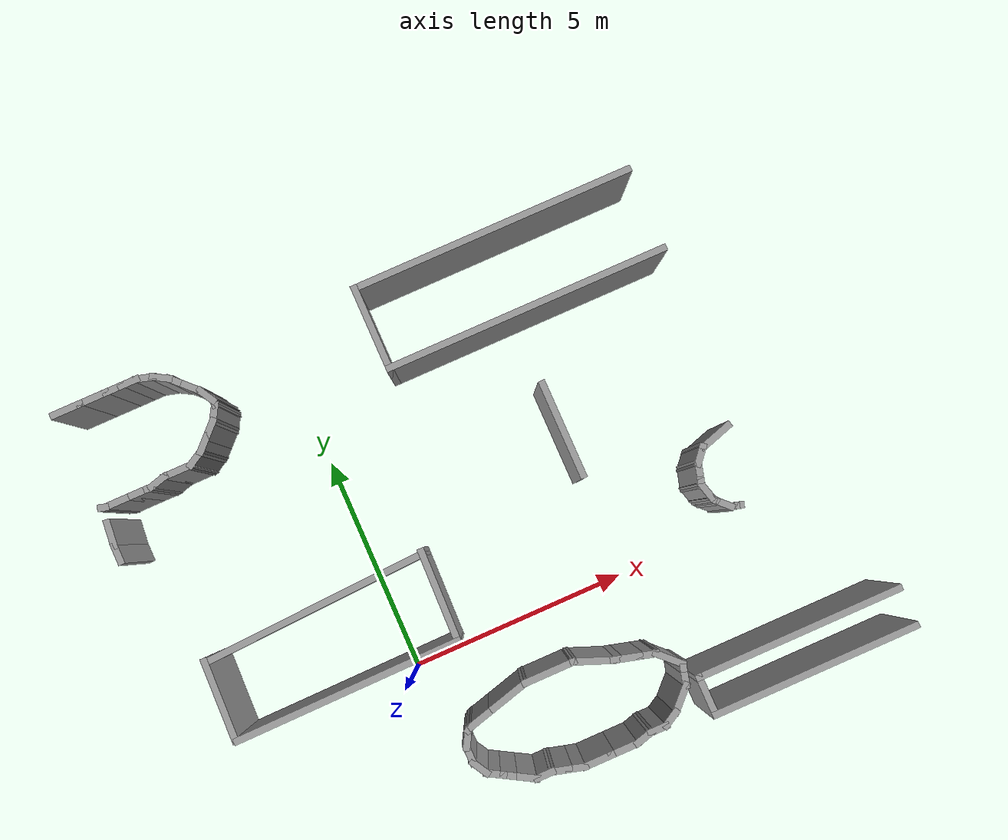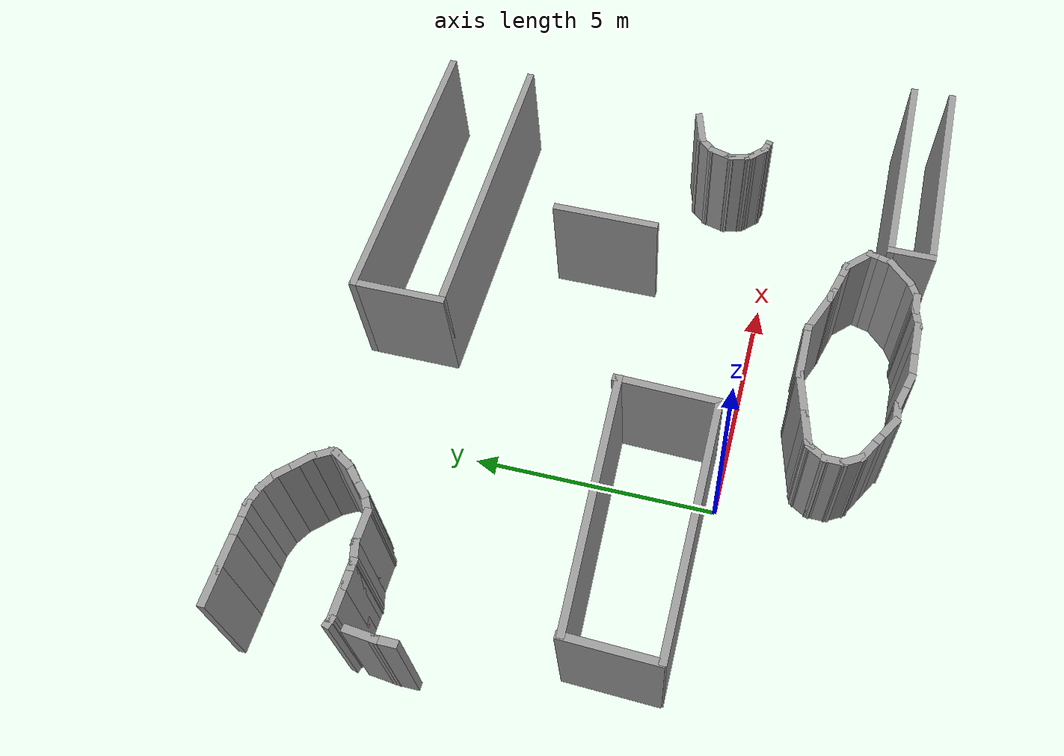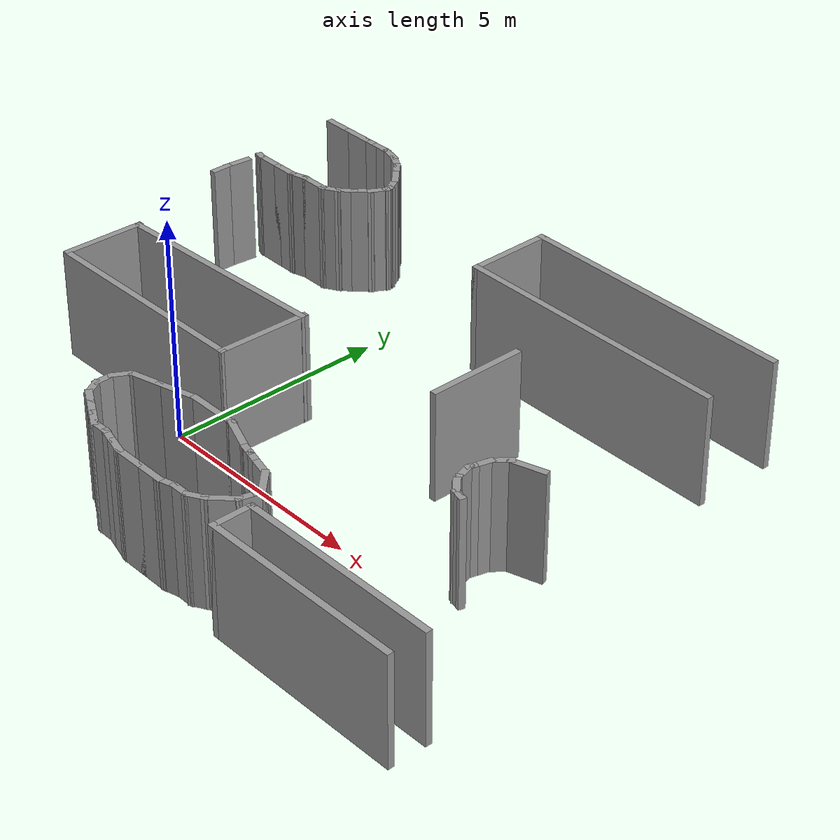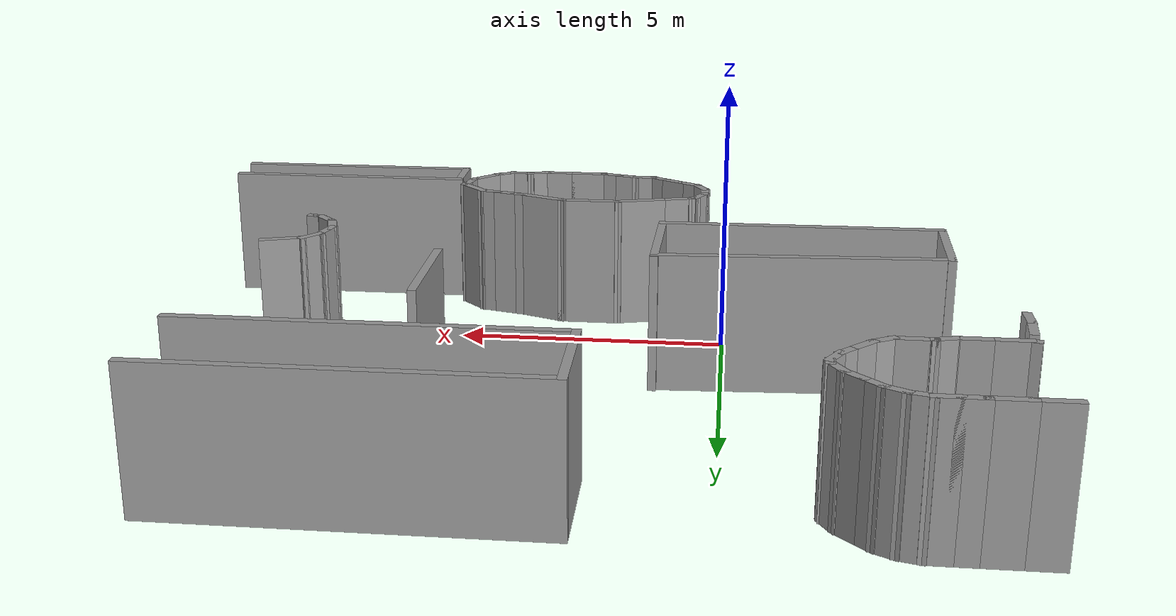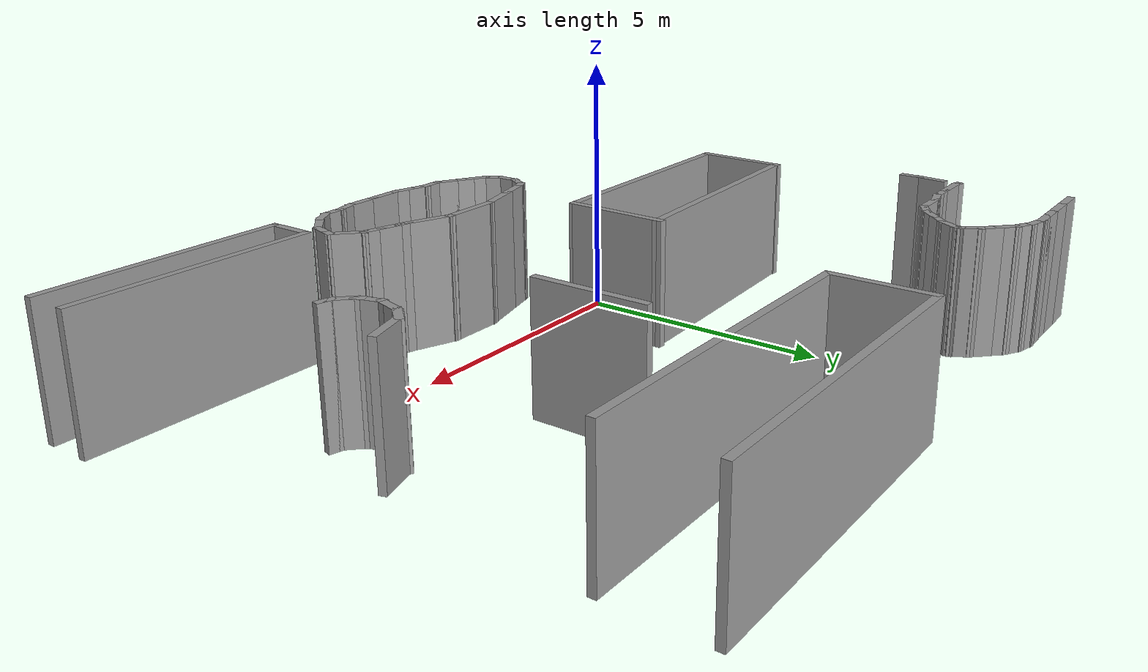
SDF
<sdf version="1.7">
 <model name="complex">
  <pose>10.9367 2.58093 0 0 -0 0</pose>
  <link name="Wall_120">
   <collision name="Wall_120_Collision">
    <geometry><box><size>1.91735 0.15 2.5</size></box></geometry>
    <pose>0 0 1.25 0 -0 0</pose>
   </collision>
   <visual name="Wall_120_Visual">
    <pose>0 0 1.25 0 -0 0</pose>
    <geometry><box><size>1.91735 0.15 2.5</size></box></geometry>
    <material>
     <script><uri>file://media/materials/scripts/gazebo.material</uri><name>Gazebo/Grey</name></script>
     <ambient>1 1 1 1</ambient>
    </material>
    <meta><layer>0</layer></meta>
   </visual>
   <pose>-14.8464 -1.43335 0 0 -0 -1.59854</pose>
  </link>
  <link name="Wall_121">
   <collision name="Wall_121_Collision">
    <geometry><box><size>5.20588 0.15 2.5</size></box></geometry>
    <pose>0 0 1.25 0 -0 0</pose>
   </collision>
   <visual name="Wall_121_Visual">
    <pose>0 0 1.25 0 -0 0</pose>
    <geometry><box><size>5.20588 0.15 2.5</size></box></geometry>
    <material>
     <script><uri>file://media/materials/scripts/gazebo.material</uri><name>Gazebo/Grey</name></script>
     <ambient>1 1 1 1</ambient>
    </material>
    <meta><layer>0</layer></meta>
   </visual>
   <pose>-12.3184 -2.31669 0 0 -0 0.009695</pose>
  </link>
  <link name="Wall_122">
   <collision name="Wall_122_Collision">
    <geometry><box><size>2.16727 0.15 2.5</size></box></geometry>
    <pose>0 0 1.25 0 -0 0</pose>
   </collision>
   <visual name="Wall_122_Visual">
    <pose>0 0 1.25 0 -0 0</pose>
    <geometry><box><size>2.16727 0.15 2.5</size></box></geometry>
    <material>
     <script><uri>file://media/materials/scripts/gazebo.material</uri><name>Gazebo/Grey</name></script>
     <ambient>1 1 1 1</ambient>
    </material>
    <meta><layer>0</layer></meta>
   </visual>
   <pose>-9.76599 -1.28384 0 0 -0 1.54649</pose>
  </link>
  <link name="Wall_123">
   <collision name="Wall_123_Collision">
    <geometry><box><size>5.21205 0.15 2.5</size></box></geometry>
    <pose>0 0 1.25 0 -0 0</pose>
   </collision>
   <visual name="Wall_123_Visual">
    <pose>0 0 1.25 0 -0 0</pose>
    <geometry><box><size>5.21205 0.15 2.5</size></box></geometry>
    <material>
     <script><uri>file://media/materials/scripts/gazebo.material</uri><name>Gazebo/Grey</name></script>
     <ambient>1 1 1 1</ambient>
    </material>
    <meta><layer>0</layer></meta>
   </visual>
   <pose>-12.2694 -0.449524 0 0 -0 -3.09219</pose>
  </link>
  <link name="Wall_138">
   <collision name="Wall_138_Collision">
    <geometry><box><size>0.5 0.15 2.5</size></box></geometry>
    <pose>0 0 1.25 0 -0 0</pose>
   </collision>
   <visual name="Wall_138_Visual">
    <pose>0 0 1.25 0 -0 0</pose>
    <geometry><box><size>0.5 0.15 2.5</size></box></geometry>
    <material>
     <script><uri>file://media/materials/scripts/gazebo.material</uri><name>Gazebo/Grey</name></script>
     <ambient>1 1 1 1</ambient>
    </material>
    <meta><layer>0</layer></meta>
   </visual>
   <pose>-15.6014 2.26172 0 0 -0 1.5708</pose>
  </link>
  <link name="Wall_139">
   <collision name="Wall_139_Collision">
    <geometry><box><size>0.661181 0.15 2.5</size></box></geometry>
    <pose>0 0 1.25 0 -0 0</pose>
   </collision>
   <visual name="Wall_139_Visual">
    <pose>0 0 1.25 0 -0 0</pose>
    <geometry><box><size>0.661181 0.15 2.5</size></box></geometry>
    <material>
     <script><uri>file://media/materials/scripts/gazebo.material</uri><name>Gazebo/Grey</name></script>
     <ambient>1 1 1 1</ambient>
    </material>
    <meta><layer>0</layer></meta>
   </visual>
   <pose>-15.5756 2.69101 0 0 -0 1.46988</pose>
  </link>
  <link name="Wall_156">
   <collision name="Wall_156_Collision">
    <geometry><box><size>0.25 0.15 2.5</size></box></geometry>
    <pose>0 0 1.25 0 -0 0</pose>
   </collision>
   <visual name="Wall_156_Visual">
    <pose>0 0 1.25 0 -0 0</pose>
    <geometry><box><size>0.25 0.15 2.5</size></box></geometry>
    <material>
     <script><uri>file://media/materials/scripts/gazebo.material</uri><name>Gazebo/Grey</name></script>
     <ambient>1 1 1 1</ambient>
    </material>
    <meta><layer>0</layer></meta>
   </visual>
   <pose>-15.4962 3.27454 0 0 -0 -0.261799</pose>
  </link>
  <link name="Wall_157">
   <collision name="Wall_157_Collision">
    <geometry><box><size>0.75 0.15 2.5</size></box></geometry>
    <pose>0 0 1.25 0 -0 0</pose>
   </collision>
   <visual name="Wall_157_Visual">
    <pose>0 0 1.25 0 -0 0</pose>
    <geometry><box><size>0.75 0.15 2.5</size></box></geometry>
    <material>
     <script><uri>file://media/materials/scripts/gazebo.material</uri><name>Gazebo/Grey</name></script>
     <ambient>1 1 1 1</ambient>
    </material>
    <meta><layer>0</layer></meta>
   </visual>
   <pose>-15.1479 3.2616 0 0 -0 0</pose>
  </link>
  <link name="Wall_158">
   <collision name="Wall_158_Collision">
    <geometry><box><size>0.5 0.15 2.5</size></box></geometry>
    <pose>0 0 1.25 0 -0 0</pose>
   </collision>
   <visual name="Wall_158_Visual">
    <pose>0 0 1.25 0 -0 0</pose>
    <geometry><box><size>0.5 0.15 2.5</size></box></geometry>
    <material>
     <script><uri>file://media/materials/scripts/gazebo.material</uri><name>Gazebo/Grey</name></script>
     <ambient>1 1 1 1</ambient>
    </material>
    <meta><layer>0</layer></meta>
   </visual>
   <pose>-14.6729 3.2616 0 0 -0 0</pose>
  </link>
  <link name="Wall_159">
   <collision name="Wall_159_Collision">
    <geometry><box><size>0.25 0.15 2.5</size></box></geometry>
    <pose>0 0 1.25 0 -0 0</pose>
   </collision>
   <visual name="Wall_159_Visual">
    <pose>0 0 1.25 0 -0 0</pose>
    <geometry><box><size>0.25 0.15 2.5</size></box></geometry>
    <material>
     <script><uri>file://media/materials/scripts/gazebo.material</uri><name>Gazebo/Grey</name></script>
     <ambient>1 1 1 1</ambient>
    </material>
    <meta><layer>0</layer></meta>
   </visual>
   <pose>-14.4479 3.2616 0 0 -0 0</pose>
  </link>
  <link name="Wall_160">
   <collision name="Wall_160_Collision">
    <geometry><box><size>0.5 0.15 2.5</size></box></geometry>
    <pose>0 0 1.25 0 -0 0</pose>
   </collision>
   <visual name="Wall_160_Visual">
    <pose>0 0 1.25 0 -0 0</pose>
    <geometry><box><size>0.5 0.15 2.5</size></box></geometry>
    <material>
     <script><uri>file://media/materials/scripts/gazebo.material</uri><name>Gazebo/Grey</name></script>
     <ambient>1 1 1 1</ambient>
    </material>
    <meta><layer>0</layer></meta>
   </visual>
   <pose>-14.2289 3.3069 0 0 -0 0.261799</pose>
  </link>
  <link name="Wall_161">
   <collision name="Wall_161_Collision">
    <geometry><box><size>0.15 0.15 2.5</size></box></geometry>
    <pose>0 0 1.25 0 -0 0</pose>
   </collision>
   <visual name="Wall_161_Visual">
    <pose>0 0 1.25 0 -0 0</pose>
    <geometry><box><size>0.15 0.15 2.5</size></box></geometry>
    <material>
     <script><uri>file://media/materials/scripts/gazebo.material</uri><name>Gazebo/Grey</name></script>
     <ambient>1 1 1 1</ambient>
    </material>
    <meta><layer>0</layer></meta>
   </visual>
   <pose>-14.0599 3.35219 0 0 -0 0</pose>
  </link>
  <link name="Wall_162">
   <collision name="Wall_162_Collision">
    <geometry><box><size>0.75 0.15 2.5</size></box></geometry>
    <pose>0 0 1.25 0 -0 0</pose>
   </collision>
   <visual name="Wall_162_Visual">
    <pose>0 0 1.25 0 -0 0</pose>
    <geometry><box><size>0.75 0.15 2.5</size></box></geometry>
    <material>
     <script><uri>file://media/materials/scripts/gazebo.material</uri><name>Gazebo/Grey</name></script>
     <ambient>1 1 1 1</ambient>
    </material>
    <meta><layer>0</layer></meta>
   </visual>
   <pose>-13.7599 3.35219 0 0 -0 0</pose>
  </link>
  <link name="Wall_163">
   <collision name="Wall_163_Collision">
    <geometry><box><size>0.5 0.15 2.5</size></box></geometry>
    <pose>0 0 1.25 0 -0 0</pose>
   </collision>
   <visual name="Wall_163_Visual">
    <pose>0 0 1.25 0 -0 0</pose>
    <geometry><box><size>0.5 0.15 2.5</size></box></geometry>
    <material>
     <script><uri>file://media/materials/scripts/gazebo.material</uri><name>Gazebo/Grey</name></script>
     <ambient>1 1 1 1</ambient>
    </material>
    <meta><layer>0</layer></meta>
   </visual>
   <pose>-13.3083 3.43969 0 0 -0 0.523599</pose>
  </link>
  <link name="Wall_164">
   <collision name="Wall_164_Collision">
    <geometry><box><size>0.5 0.15 2.5</size></box></geometry>
    <pose>0 0 1.25 0 -0 0</pose>
   </collision>
   <visual name="Wall_164_Visual">
    <pose>0 0 1.25 0 -0 0</pose>
    <geometry><box><size>0.5 0.15 2.5</size></box></geometry>
    <material>
     <script><uri>file://media/materials/scripts/gazebo.material</uri><name>Gazebo/Grey</name></script>
     <ambient>1 1 1 1</ambient>
    </material>
    <meta><layer>0</layer></meta>
   </visual>
   <pose>-13.033 3.65093 0 0 -0 0.785398</pose>
  </link>
  <link name="Wall_165">
   <collision name="Wall_165_Collision">
    <geometry><box><size>0.5 0.15 2.5</size></box></geometry>
    <pose>0 0 1.25 0 -0 0</pose>
   </collision>
   <visual name="Wall_165_Visual">
    <pose>0 0 1.25 0 -0 0</pose>
    <geometry><box><size>0.5 0.15 2.5</size></box></geometry>
    <material>
     <script><uri>file://media/materials/scripts/gazebo.material</uri><name>Gazebo/Grey</name></script>
     <ambient>1 1 1 1</ambient>
    </material>
    <meta><layer>0</layer></meta>
   </visual>
   <pose>-12.7855 3.89842 0 0 -0 0.785398</pose>
  </link>
  <link name="Wall_166">
   <collision name="Wall_166_Collision">
    <geometry><box><size>0.5 0.15 2.5</size></box></geometry>
    <pose>0 0 1.25 0 -0 0</pose>
   </collision>
   <visual name="Wall_166_Visual">
    <pose>0 0 1.25 0 -0 0</pose>
    <geometry><box><size>0.5 0.15 2.5</size></box></geometry>
    <material>
     <script><uri>file://media/materials/scripts/gazebo.material</uri><name>Gazebo/Grey</name></script>
     <ambient>1 1 1 1</ambient>
    </material>
    <meta><layer>0</layer></meta>
   </visual>
   <pose>-12.5743 4.17372 0 0 -0 1.0472</pose>
  </link>
  <link name="Wall_167">
   <collision name="Wall_167_Collision">
    <geometry><box><size>0.25 0.15 2.5</size></box></geometry>
    <pose>0 0 1.25 0 -0 0</pose>
   </collision>
   <visual name="Wall_167_Visual">
    <pose>0 0 1.25 0 -0 0</pose>
    <geometry><box><size>0.25 0.15 2.5</size></box></geometry>
    <material>
     <script><uri>file://media/materials/scripts/gazebo.material</uri><name>Gazebo/Grey</name></script>
     <ambient>1 1 1 1</ambient>
    </material>
    <meta><layer>0</layer></meta>
   </visual>
   <pose>-12.4868 4.37527 0 0 -0 1.5708</pose>
  </link>
  <link name="Wall_168">
   <collision name="Wall_168_Collision">
    <geometry><box><size>0.5 0.15 2.5</size></box></geometry>
    <pose>0 0 1.25 0 -0 0</pose>
   </collision>
   <visual name="Wall_168_Visual">
    <pose>0 0 1.25 0 -0 0</pose>
    <geometry><box><size>0.5 0.15 2.5</size></box></geometry>
    <material>
     <script><uri>file://media/materials/scripts/gazebo.material</uri><name>Gazebo/Grey</name></script>
     <ambient>1 1 1 1</ambient>
    </material>
    <meta><layer>0</layer></meta>
   </visual>
   <pose>-12.5743 4.57683 0 0 -0 2.0944</pose>
  </link>
  <link name="Wall_169">
   <collision name="Wall_169_Collision">
    <geometry><box><size>0.5 0.15 2.5</size></box></geometry>
    <pose>0 0 1.25 0 -0 0</pose>
   </collision>
   <visual name="Wall_169_Visual">
    <pose>0 0 1.25 0 -0 0</pose>
    <geometry><box><size>0.5 0.15 2.5</size></box></geometry>
    <material>
     <script><uri>file://media/materials/scripts/gazebo.material</uri><name>Gazebo/Grey</name></script>
     <ambient>1 1 1 1</ambient>
    </material>
    <meta><layer>0</layer></meta>
   </visual>
   <pose>-12.7855 4.85213 0 0 -0 2.35619</pose>
  </link>
  <link name="Wall_170">
   <collision name="Wall_170_Collision">
    <geometry><box><size>0.5 0.15 2.5</size></box></geometry>
    <pose>0 0 1.25 0 -0 0</pose>
   </collision>
   <visual name="Wall_170_Visual">
    <pose>0 0 1.25 0 -0 0</pose>
    <geometry><box><size>0.5 0.15 2.5</size></box></geometry>
    <material>
     <script><uri>file://media/materials/scripts/gazebo.material</uri><name>Gazebo/Grey</name></script>
     <ambient>1 1 1 1</ambient>
    </material>
    <meta><layer>0</layer></meta>
   </visual>
   <pose>-13.033 5.09961 0 0 -0 2.35619</pose>
  </link>
  <link name="Wall_171">
   <collision name="Wall_171_Collision">
    <geometry><box><size>0.5 0.15 2.5</size></box></geometry>
    <pose>0 0 1.25 0 -0 0</pose>
   </collision>
   <visual name="Wall_171_Visual">
    <pose>0 0 1.25 0 -0 0</pose>
    <geometry><box><size>0.5 0.15 2.5</size></box></geometry>
    <material>
     <script><uri>file://media/materials/scripts/gazebo.material</uri><name>Gazebo/Grey</name></script>
     <ambient>1 1 1 1</ambient>
    </material>
    <meta><layer>0</layer></meta>
   </visual>
   <pose>-13.3083 5.31086 0 0 -0 2.61799</pose>
  </link>
  <link name="Wall_172">
   <collision name="Wall_172_Collision">
    <geometry><box><size>0.5 0.15 2.5</size></box></geometry>
    <pose>0 0 1.25 0 -0 0</pose>
   </collision>
   <visual name="Wall_172_Visual">
    <pose>0 0 1.25 0 -0 0</pose>
    <geometry><box><size>0.5 0.15 2.5</size></box></geometry>
    <material>
     <script><uri>file://media/materials/scripts/gazebo.material</uri><name>Gazebo/Grey</name></script>
     <ambient>1 1 1 1</ambient>
    </material>
    <meta><layer>0</layer></meta>
   </visual>
   <pose>-13.6289 5.44365 0 0 -0 2.87979</pose>
  </link>
  <link name="Wall_173">
   <collision name="Wall_173_Collision">
    <geometry><box><size>0.5 0.15 2.5</size></box></geometry>
    <pose>0 0 1.25 0 -0 0</pose>
   </collision>
   <visual name="Wall_173_Visual">
    <pose>0 0 1.25 0 -0 0</pose>
    <geometry><box><size>0.5 0.15 2.5</size></box></geometry>
    <material>
     <script><uri>file://media/materials/scripts/gazebo.material</uri><name>Gazebo/Grey</name></script>
     <ambient>1 1 1 1</ambient>
    </material>
    <meta><layer>0</layer></meta>
   </visual>
   <pose>-13.9729 5.48894 0 0 -0 3.14159</pose>
  </link>
  <link name="Wall_174">
   <collision name="Wall_174_Collision">
    <geometry><box><size>0.5 0.15 2.5</size></box></geometry>
    <pose>0 0 1.25 0 -0 0</pose>
   </collision>
   <visual name="Wall_174_Visual">
    <pose>0 0 1.25 0 -0 0</pose>
    <geometry><box><size>0.5 0.15 2.5</size></box></geometry>
    <material>
     <script><uri>file://media/materials/scripts/gazebo.material</uri><name>Gazebo/Grey</name></script>
     <ambient>1 1 1 1</ambient>
    </material>
    <meta><layer>0</layer></meta>
   </visual>
   <pose>-14.3229 5.48894 0 0 -0 3.14159</pose>
  </link>
  <link name="Wall_175">
   <collision name="Wall_175_Collision">
    <geometry><box><size>0.75 0.15 2.5</size></box></geometry>
    <pose>0 0 1.25 0 -0 0</pose>
   </collision>
   <visual name="Wall_175_Visual">
    <pose>0 0 1.25 0 -0 0</pose>
    <geometry><box><size>0.75 0.15 2.5</size></box></geometry>
    <material>
     <script><uri>file://media/materials/scripts/gazebo.material</uri><name>Gazebo/Grey</name></script>
     <ambient>1 1 1 1</ambient>
    </material>
    <meta><layer>0</layer></meta>
   </visual>
   <pose>-14.7979 5.48894 0 0 -0 3.14159</pose>
  </link>
  <link name="Wall_176">
   <collision name="Wall_176_Collision">
    <geometry><box><size>0.75 0.15 2.5</size></box></geometry>
    <pose>0 0 1.25 0 -0 0</pose>
   </collision>
   <visual name="Wall_176_Visual">
    <pose>0 0 1.25 0 -0 0</pose>
    <geometry><box><size>0.75 0.15 2.5</size></box></geometry>
    <material>
     <script><uri>file://media/materials/scripts/gazebo.material</uri><name>Gazebo/Grey</name></script>
     <ambient>1 1 1 1</ambient>
    </material>
    <meta><layer>0</layer></meta>
   </visual>
   <pose>-15.3979 5.48894 0 0 -0 3.14159</pose>
  </link>
  <link name="Wall_187">
   <collision name="Wall_187_Collision">
    <geometry><box><size>2 0.15 2.5</size></box></geometry>
    <pose>0 0 1.25 0 -0 0</pose>
   </collision>
   <visual name="Wall_187_Visual">
    <pose>0 0 1.25 0 -0 0</pose>
    <geometry><box><size>2 0.15 2.5</size></box></geometry>
    <material>
     <script><uri>file://media/materials/scripts/gazebo.material</uri><name>Gazebo/Grey</name></script>
     <ambient>1 1 1 1</ambient>
    </material>
    <meta><layer>0</layer></meta>
   </visual>
   <pose>-8.80459 4.47638 0 0 -0 -1.5708</pose>
  </link>
  <link name="Wall_188">
   <collision name="Wall_188_Collision">
    <geometry><box><size>6.5 0.15 2.5</size></box></geometry>
    <pose>0 0 1.25 0 -0 0</pose>
   </collision>
   <visual name="Wall_188_Visual">
    <pose>0 0 1.25 0 -0 0</pose>
    <geometry><box><size>6.5 0.15 2.5</size></box></geometry>
    <material>
     <script><uri>file://media/materials/scripts/gazebo.material</uri><name>Gazebo/Grey</name></script>
     <ambient>1 1 1 1</ambient>
    </material>
    <meta><layer>0</layer></meta>
   </visual>
   <pose>-5.62959 3.55138 0 0 -0 0</pose>
  </link>
  <link name="Wall_190">
   <collision name="Wall_190_Collision">
    <geometry><box><size>6.5 0.15 2.5</size></box></geometry>
    <pose>0 0 1.25 0 -0 0</pose>
   </collision>
   <visual name="Wall_190_Visual">
    <pose>0 0 1.25 0 -0 0</pose>
    <geometry><box><size>6.5 0.15 2.5</size></box></geometry>
    <material>
     <script><uri>file://media/materials/scripts/gazebo.material</uri><name>Gazebo/Grey</name></script>
     <ambient>1 1 1 1</ambient>
    </material>
    <meta><layer>0</layer></meta>
   </visual>
   <pose>-5.62959 5.40138 0 0 -0 3.14159</pose>
  </link>
  <link name="Wall_192">
   <collision name="Wall_192_Collision">
    <geometry><box><size>2.25149 0.15 2.5</size></box></geometry>
    <pose>0 0 1.25 0 -0 0</pose>
   </collision>
   <visual name="Wall_192_Visual">
    <pose>0 0 1.25 0 -0 0</pose>
    <geometry><box><size>2.25149 0.15 2.5</size></box></geometry>
    <material>
     <script><uri>file://media/materials/scripts/gazebo.material</uri><name>Gazebo/Grey</name></script>
     <ambient>1 1 1 1</ambient>
    </material>
    <meta><layer>0</layer></meta>
   </visual>
   <pose>-5.97278 0.884918 0 0 -0 -1.5708</pose>
  </link>
  <link name="Wall_197">
   <collision name="Wall_197_Collision">
    <geometry><box><size>0.835395 0.15 2.5</size></box></geometry>
    <pose>0 0 1.25 0 -0 0</pose>
   </collision>
   <visual name="Wall_197_Visual">
    <pose>0 0 1.25 0 -0 0</pose>
    <geometry><box><size>0.835395 0.15 2.5</size></box></geometry>
    <material>
     <script><uri>file://media/materials/scripts/gazebo.material</uri><name>Gazebo/Grey</name></script>
     <ambient>1 1 1 1</ambient>
    </material>
    <meta><layer>0</layer></meta>
   </visual>
   <pose>-3.07446 -0.551457 0 0 -0 -2.8381</pose>
  </link>
  <link name="Wall_198">
   <collision name="Wall_198_Collision">
    <geometry><box><size>0.524368 0.15 2.5</size></box></geometry>
    <pose>0 0 1.25 0 -0 0</pose>
   </collision>
   <visual name="Wall_198_Visual">
    <pose>0 0 1.25 0 -0 0</pose>
    <geometry><box><size>0.524368 0.15 2.5</size></box></geometry>
    <material>
     <script><uri>file://media/materials/scripts/gazebo.material</uri><name>Gazebo/Grey</name></script>
     <ambient>1 1 1 1</ambient>
    </material>
    <meta><layer>0</layer></meta>
   </visual>
   <pose>-3.53433 -0.784558 0 0 -0 -2.27135</pose>
  </link>
  <link name="Wall_199">
   <collision name="Wall_199_Collision">
    <geometry><box><size>0.5 0.15 2.5</size></box></geometry>
    <pose>0 0 1.25 0 -0 0</pose>
   </collision>
   <visual name="Wall_199_Visual">
    <pose>0 0 1.25 0 -0 0</pose>
    <geometry><box><size>0.5 0.15 2.5</size></box></geometry>
    <material>
     <script><uri>file://media/materials/scripts/gazebo.material</uri><name>Gazebo/Grey</name></script>
     <ambient>1 1 1 1</ambient>
    </material>
    <meta><layer>0</layer></meta>
   </visual>
   <pose>-3.70029 -1.09669 0 0 -0 -1.8326</pose>
  </link>
  <link name="Wall_200">
   <collision name="Wall_200_Collision">
    <geometry><box><size>0.25 0.15 2.5</size></box></geometry>
    <pose>0 0 1.25 0 -0 0</pose>
   </collision>
   <visual name="Wall_200_Visual">
    <pose>0 0 1.25 0 -0 0</pose>
    <geometry><box><size>0.25 0.15 2.5</size></box></geometry>
    <material>
     <script><uri>file://media/materials/scripts/gazebo.material</uri><name>Gazebo/Grey</name></script>
     <ambient>1 1 1 1</ambient>
    </material>
    <meta><layer>0</layer></meta>
   </visual>
   <pose>-3.75852 -1.31403 0 0 -0 -1.8326</pose>
  </link>
  <link name="Wall_201">
   <collision name="Wall_201_Collision">
    <geometry><box><size>0.5 0.15 2.5</size></box></geometry>
    <pose>0 0 1.25 0 -0 0</pose>
   </collision>
   <visual name="Wall_201_Visual">
    <pose>0 0 1.25 0 -0 0</pose>
    <geometry><box><size>0.5 0.15 2.5</size></box></geometry>
    <material>
     <script><uri>file://media/materials/scripts/gazebo.material</uri><name>Gazebo/Grey</name></script>
     <ambient>1 1 1 1</ambient>
    </material>
    <meta><layer>0</layer></meta>
   </visual>
   <pose>-3.72617 -1.53136 0 0 -0 -1.309</pose>
  </link>
  <link name="Wall_202">
   <collision name="Wall_202_Collision">
    <geometry><box><size>0.25 0.15 2.5</size></box></geometry>
    <pose>0 0 1.25 0 -0 0</pose>
   </collision>
   <visual name="Wall_202_Visual">
    <pose>0 0 1.25 0 -0 0</pose>
    <geometry><box><size>0.25 0.15 2.5</size></box></geometry>
    <material>
     <script><uri>file://media/materials/scripts/gazebo.material</uri><name>Gazebo/Grey</name></script>
     <ambient>1 1 1 1</ambient>
    </material>
    <meta><layer>0</layer></meta>
   </visual>
   <pose>-3.65588 -1.7437 0 0 -0 -1.0472</pose>
  </link>
  <link name="Wall_203">
   <collision name="Wall_203_Collision">
    <geometry><box><size>0.5 0.15 2.5</size></box></geometry>
    <pose>0 0 1.25 0 -0 0</pose>
   </collision>
   <visual name="Wall_203_Visual">
    <pose>0 0 1.25 0 -0 0</pose>
    <geometry><box><size>0.5 0.15 2.5</size></box></geometry>
    <material>
     <script><uri>file://media/materials/scripts/gazebo.material</uri><name>Gazebo/Grey</name></script>
     <ambient>1 1 1 1</ambient>
    </material>
    <meta><layer>0</layer></meta>
   </visual>
   <pose>-3.50713 -1.91074 0 0 -0 -0.785398</pose>
  </link>
  <link name="Wall_204">
   <collision name="Wall_204_Collision">
    <geometry><box><size>0.25 0.15 2.5</size></box></geometry>
    <pose>0 0 1.25 0 -0 0</pose>
   </collision>
   <visual name="Wall_204_Visual">
    <pose>0 0 1.25 0 -0 0</pose>
    <geometry><box><size>0.25 0.15 2.5</size></box></geometry>
    <material>
     <script><uri>file://media/materials/scripts/gazebo.material</uri><name>Gazebo/Grey</name></script>
     <ambient>1 1 1 1</ambient>
    </material>
    <meta><layer>0</layer></meta>
   </visual>
   <pose>-3.33509 -2.04743 0 0 -0 -0.261799</pose>
  </link>
  <link name="Wall_205">
   <collision name="Wall_205_Collision">
    <geometry><box><size>0.25 0.15 2.5</size></box></geometry>
    <pose>0 0 1.25 0 -0 0</pose>
   </collision>
   <visual name="Wall_205_Visual">
    <pose>0 0 1.25 0 -0 0</pose>
    <geometry><box><size>0.25 0.15 2.5</size></box></geometry>
    <material>
     <script><uri>file://media/materials/scripts/gazebo.material</uri><name>Gazebo/Grey</name></script>
     <ambient>1 1 1 1</ambient>
    </material>
    <meta><layer>0</layer></meta>
   </visual>
   <pose>-3.2385 -2.07331 0 0 -0 -0.261799</pose>
  </link>
  <link name="Wall_220">
   <collision name="Wall_220_Collision">
    <geometry><box><size>1.25 0.15 2.5</size></box></geometry>
    <pose>0 0 1.25 0 -0 0</pose>
   </collision>
   <visual name="Wall_220_Visual">
    <pose>0 0 1.25 0 -0 0</pose>
    <geometry><box><size>1.25 0.15 2.5</size></box></geometry>
    <material>
     <script><uri>file://media/materials/scripts/gazebo.material</uri><name>Gazebo/Grey</name></script>
     <ambient>1 1 1 1</ambient>
    </material>
    <meta><layer>0</layer></meta>
   </visual>
   <pose>-8.29894 -3.66376 0 0 -0 3.14159</pose>
  </link>
  <link name="Wall_221">
   <collision name="Wall_221_Collision">
    <geometry><box><size>1 0.15 2.5</size></box></geometry>
    <pose>0 0 1.25 0 -0 0</pose>
   </collision>
   <visual name="Wall_221_Visual">
    <pose>0 0 1.25 0 -0 0</pose>
    <geometry><box><size>1 0.15 2.5</size></box></geometry>
    <material>
     <script><uri>file://media/materials/scripts/gazebo.material</uri><name>Gazebo/Grey</name></script>
     <ambient>1 1 1 1</ambient>
    </material>
    <meta><layer>0</layer></meta>
   </visual>
   <pose>-9.25946 -3.77376 0 0 -0 -2.87979</pose>
  </link>
  <link name="Wall_222">
   <collision name="Wall_222_Collision">
    <geometry><box><size>0.75 0.15 2.5</size></box></geometry>
    <pose>0 0 1.25 0 -0 0</pose>
   </collision>
   <visual name="Wall_222_Visual">
    <pose>0 0 1.25 0 -0 0</pose>
    <geometry><box><size>0.75 0.15 2.5</size></box></geometry>
    <material>
     <script><uri>file://media/materials/scripts/gazebo.material</uri><name>Gazebo/Grey</name></script>
     <ambient>1 1 1 1</ambient>
    </material>
    <meta><layer>0</layer></meta>
   </visual>
   <pose>-9.95976 -3.96141 0 0 -0 -2.87979</pose>
  </link>
  <link name="Wall_223">
   <collision name="Wall_223_Collision">
    <geometry><box><size>0.25 0.15 2.5</size></box></geometry>
    <pose>0 0 1.25 0 -0 0</pose>
   </collision>
   <visual name="Wall_223_Visual">
    <pose>0 0 1.25 0 -0 0</pose>
    <geometry><box><size>0.25 0.15 2.5</size></box></geometry>
    <material>
     <script><uri>file://media/materials/scripts/gazebo.material</uri><name>Gazebo/Grey</name></script>
     <ambient>1 1 1 1</ambient>
    </material>
    <meta><layer>0</layer></meta>
   </visual>
   <pose>-10.2928 -4.06405 0 0 -0 -2.61799</pose>
  </link>
  <link name="Wall_224">
   <collision name="Wall_224_Collision">
    <geometry><box><size>0.5 0.15 2.5</size></box></geometry>
    <pose>0 0 1.25 0 -0 0</pose>
   </collision>
   <visual name="Wall_224_Visual">
    <pose>0 0 1.25 0 -0 0</pose>
    <geometry><box><size>0.5 0.15 2.5</size></box></geometry>
    <material>
     <script><uri>file://media/materials/scripts/gazebo.material</uri><name>Gazebo/Grey</name></script>
     <ambient>1 1 1 1</ambient>
    </material>
    <meta><layer>0</layer></meta>
   </visual>
   <pose>-10.4236 -4.24061 0 0 -0 -2.0944</pose>
  </link>
  <link name="Wall_225">
   <collision name="Wall_225_Collision">
    <geometry><box><size>0.15 0.15 2.5</size></box></geometry>
    <pose>0 0 1.25 0 -0 0</pose>
   </collision>
   <visual name="Wall_225_Visual">
    <pose>0 0 1.25 0 -0 0</pose>
    <geometry><box><size>0.15 0.15 2.5</size></box></geometry>
    <material>
     <script><uri>file://media/materials/scripts/gazebo.material</uri><name>Gazebo/Grey</name></script>
     <ambient>1 1 1 1</ambient>
    </material>
    <meta><layer>0</layer></meta>
   </visual>
   <pose>-10.5111 -4.39216 0 0 -0 0</pose>
  </link>
  <link name="Wall_226">
   <collision name="Wall_226_Collision">
    <geometry><box><size>0.5 0.15 2.5</size></box></geometry>
    <pose>0 0 1.25 0 -0 0</pose>
   </collision>
   <visual name="Wall_226_Visual">
    <pose>0 0 1.25 0 -0 0</pose>
    <geometry><box><size>0.5 0.15 2.5</size></box></geometry>
    <material>
     <script><uri>file://media/materials/scripts/gazebo.material</uri><name>Gazebo/Grey</name></script>
     <ambient>1 1 1 1</ambient>
    </material>
    <meta><layer>0</layer></meta>
   </visual>
   <pose>-10.5111 -4.56716 0 0 -0 -1.5708</pose>
  </link>
  <link name="Wall_227">
   <collision name="Wall_227_Collision">
    <geometry><box><size>0.5 0.15 2.5</size></box></geometry>
    <pose>0 0 1.25 0 -0 0</pose>
   </collision>
   <visual name="Wall_227_Visual">
    <pose>0 0 1.25 0 -0 0</pose>
    <geometry><box><size>0.5 0.15 2.5</size></box></geometry>
    <material>
     <script><uri>file://media/materials/scripts/gazebo.material</uri><name>Gazebo/Grey</name></script>
     <ambient>1 1 1 1</ambient>
    </material>
    <meta><layer>0</layer></meta>
   </visual>
   <pose>-10.4236 -4.89371 0 0 -0 -1.0472</pose>
  </link>
  <link name="Wall_228">
   <collision name="Wall_228_Collision">
    <geometry><box><size>0.5 0.15 2.5</size></box></geometry>
    <pose>0 0 1.25 0 -0 0</pose>
   </collision>
   <visual name="Wall_228_Visual">
    <pose>0 0 1.25 0 -0 0</pose>
    <geometry><box><size>0.5 0.15 2.5</size></box></geometry>
    <material>
     <script><uri>file://media/materials/scripts/gazebo.material</uri><name>Gazebo/Grey</name></script>
     <ambient>1 1 1 1</ambient>
    </material>
    <meta><layer>0</layer></meta>
   </visual>
   <pose>-10.1846 -5.13277 0 0 -0 -0.523599</pose>
  </link>
  <link name="Wall_229">
   <collision name="Wall_229_Collision">
    <geometry><box><size>0.5 0.15 2.5</size></box></geometry>
    <pose>0 0 1.25 0 -0 0</pose>
   </collision>
   <visual name="Wall_229_Visual">
    <pose>0 0 1.25 0 -0 0</pose>
    <geometry><box><size>0.5 0.15 2.5</size></box></geometry>
    <material>
     <script><uri>file://media/materials/scripts/gazebo.material</uri><name>Gazebo/Grey</name></script>
     <ambient>1 1 1 1</ambient>
    </material>
    <meta><layer>0</layer></meta>
   </visual>
   <pose>-9.88147 -5.30777 0 0 -0 -0.523599</pose>
  </link>
  <link name="Wall_230">
   <collision name="Wall_230_Collision">
    <geometry><box><size>0.5 0.15 2.5</size></box></geometry>
    <pose>0 0 1.25 0 -0 0</pose>
   </collision>
   <visual name="Wall_230_Visual">
    <pose>0 0 1.25 0 -0 0</pose>
    <geometry><box><size>0.5 0.15 2.5</size></box></geometry>
    <material>
     <script><uri>file://media/materials/scripts/gazebo.material</uri><name>Gazebo/Grey</name></script>
     <ambient>1 1 1 1</ambient>
    </material>
    <meta><layer>0</layer></meta>
   </visual>
   <pose>-9.57836 -5.48277 0 0 -0 -0.523599</pose>
  </link>
  <link name="Wall_231">
   <collision name="Wall_231_Collision">
    <geometry><box><size>0.5 0.15 2.5</size></box></geometry>
    <pose>0 0 1.25 0 -0 0</pose>
   </collision>
   <visual name="Wall_231_Visual">
    <pose>0 0 1.25 0 -0 0</pose>
    <geometry><box><size>0.5 0.15 2.5</size></box></geometry>
    <material>
     <script><uri>file://media/materials/scripts/gazebo.material</uri><name>Gazebo/Grey</name></script>
     <ambient>1 1 1 1</ambient>
    </material>
    <meta><layer>0</layer></meta>
   </visual>
   <pose>-9.25181 -5.57027 0 0 -0 0</pose>
  </link>
  <link name="Wall_232">
   <collision name="Wall_232_Collision">
    <geometry><box><size>0.5 0.15 2.5</size></box></geometry>
    <pose>0 0 1.25 0 -0 0</pose>
   </collision>
   <visual name="Wall_232_Visual">
    <pose>0 0 1.25 0 -0 0</pose>
    <geometry><box><size>0.5 0.15 2.5</size></box></geometry>
    <material>
     <script><uri>file://media/materials/scripts/gazebo.material</uri><name>Gazebo/Grey</name></script>
     <ambient>1 1 1 1</ambient>
    </material>
    <meta><layer>0</layer></meta>
   </visual>
   <pose>-8.90777 -5.61556 0 0 -0 -0.261799</pose>
  </link>
  <link name="Wall_233">
   <collision name="Wall_233_Collision">
    <geometry><box><size>0.5 0.15 2.5</size></box></geometry>
    <pose>0 0 1.25 0 -0 0</pose>
   </collision>
   <visual name="Wall_233_Visual">
    <pose>0 0 1.25 0 -0 0</pose>
    <geometry><box><size>0.5 0.15 2.5</size></box></geometry>
    <material>
     <script><uri>file://media/materials/scripts/gazebo.material</uri><name>Gazebo/Grey</name></script>
     <ambient>1 1 1 1</ambient>
    </material>
    <meta><layer>0</layer></meta>
   </visual>
   <pose>-8.5697 -5.70615 0 0 -0 -0.261799</pose>
  </link>
  <link name="Wall_234">
   <collision name="Wall_234_Collision">
    <geometry><box><size>0.75 0.15 2.5</size></box></geometry>
    <pose>0 0 1.25 0 -0 0</pose>
   </collision>
   <visual name="Wall_234_Visual">
    <pose>0 0 1.25 0 -0 0</pose>
    <geometry><box><size>0.75 0.15 2.5</size></box></geometry>
    <material>
     <script><uri>file://media/materials/scripts/gazebo.material</uri><name>Gazebo/Grey</name></script>
     <ambient>1 1 1 1</ambient>
    </material>
    <meta><layer>0</layer></meta>
   </visual>
   <pose>-8.10066 -5.75144 0 0 -0 0</pose>
  </link>
  <link name="Wall_235">
   <collision name="Wall_235_Collision">
    <geometry><box><size>0.75 0.15 2.5</size></box></geometry>
    <pose>0 0 1.25 0 -0 0</pose>
   </collision>
   <visual name="Wall_235_Visual">
    <pose>0 0 1.25 0 -0 0</pose>
    <geometry><box><size>0.75 0.15 2.5</size></box></geometry>
    <material>
     <script><uri>file://media/materials/scripts/gazebo.material</uri><name>Gazebo/Grey</name></script>
     <ambient>1 1 1 1</ambient>
    </material>
    <meta><layer>0</layer></meta>
   </visual>
   <pose>-7.50066 -5.75144 0 0 -0 0</pose>
  </link>
  <link name="Wall_236">
   <collision name="Wall_236_Collision">
    <geometry><box><size>0.5 0.15 2.5</size></box></geometry>
    <pose>0 0 1.25 0 -0 0</pose>
   </collision>
   <visual name="Wall_236_Visual">
    <pose>0 0 1.25 0 -0 0</pose>
    <geometry><box><size>0.5 0.15 2.5</size></box></geometry>
    <material>
     <script><uri>file://media/materials/scripts/gazebo.material</uri><name>Gazebo/Grey</name></script>
     <ambient>1 1 1 1</ambient>
    </material>
    <meta><layer>0</layer></meta>
   </visual>
   <pose>-7.03163 -5.70615 0 0 -0 0.261799</pose>
  </link>
  <link name="Wall_237">
   <collision name="Wall_237_Collision">
    <geometry><box><size>0.5 0.15 2.5</size></box></geometry>
    <pose>0 0 1.25 0 -0 0</pose>
   </collision>
   <visual name="Wall_237_Visual">
    <pose>0 0 1.25 0 -0 0</pose>
    <geometry><box><size>0.5 0.15 2.5</size></box></geometry>
    <material>
     <script><uri>file://media/materials/scripts/gazebo.material</uri><name>Gazebo/Grey</name></script>
     <ambient>1 1 1 1</ambient>
    </material>
    <meta><layer>0</layer></meta>
   </visual>
   <pose>-6.68759 -5.66086 0 0 -0 0</pose>
  </link>
  <link name="Wall_238">
   <collision name="Wall_238_Collision">
    <geometry><box><size>0.5 0.15 2.5</size></box></geometry>
    <pose>0 0 1.25 0 -0 0</pose>
   </collision>
   <visual name="Wall_238_Visual">
    <pose>0 0 1.25 0 -0 0</pose>
    <geometry><box><size>0.5 0.15 2.5</size></box></geometry>
    <material>
     <script><uri>file://media/materials/scripts/gazebo.material</uri><name>Gazebo/Grey</name></script>
     <ambient>1 1 1 1</ambient>
    </material>
    <meta><layer>0</layer></meta>
   </visual>
   <pose>-6.36103 -5.57336 0 0 -0 0.523599</pose>
  </link>
  <link name="Wall_239">
   <collision name="Wall_239_Collision">
    <geometry><box><size>0.75 0.15 2.5</size></box></geometry>
    <pose>0 0 1.25 0 -0 0</pose>
   </collision>
   <visual name="Wall_239_Visual">
    <pose>0 0 1.25 0 -0 0</pose>
    <geometry><box><size>0.75 0.15 2.5</size></box></geometry>
    <material>
     <script><uri>file://media/materials/scripts/gazebo.material</uri><name>Gazebo/Grey</name></script>
     <ambient>1 1 1 1</ambient>
    </material>
    <meta><layer>0</layer></meta>
   </visual>
   <pose>-5.99735 -5.27372 0 0 -0 0.785398</pose>
  </link>
  <link name="Wall_240">
   <collision name="Wall_240_Collision">
    <geometry><box><size>0.5 0.15 2.5</size></box></geometry>
    <pose>0 0 1.25 0 -0 0</pose>
   </collision>
   <visual name="Wall_240_Visual">
    <pose>0 0 1.25 0 -0 0</pose>
    <geometry><box><size>0.5 0.15 2.5</size></box></geometry>
    <material>
     <script><uri>file://media/materials/scripts/gazebo.material</uri><name>Gazebo/Grey</name></script>
     <ambient>1 1 1 1</ambient>
    </material>
    <meta><layer>0</layer></meta>
   </visual>
   <pose>-5.73992 -4.89255 0 0 -0 1.309</pose>
  </link>
  <link name="Wall_241">
   <collision name="Wall_241_Collision">
    <geometry><box><size>0.25 0.15 2.5</size></box></geometry>
    <pose>0 0 1.25 0 -0 0</pose>
   </collision>
   <visual name="Wall_241_Visual">
    <pose>0 0 1.25 0 -0 0</pose>
    <geometry><box><size>0.25 0.15 2.5</size></box></geometry>
    <material>
     <script><uri>file://media/materials/scripts/gazebo.material</uri><name>Gazebo/Grey</name></script>
     <ambient>1 1 1 1</ambient>
    </material>
    <meta><layer>0</layer></meta>
   </visual>
   <pose>-5.68169 -4.67522 0 0 -0 1.309</pose>
  </link>
  <link name="Wall_242">
   <collision name="Wall_242_Collision">
    <geometry><box><size>0.75 0.15 2.5</size></box></geometry>
    <pose>0 0 1.25 0 -0 0</pose>
   </collision>
   <visual name="Wall_242_Visual">
    <pose>0 0 1.25 0 -0 0</pose>
    <geometry><box><size>0.75 0.15 2.5</size></box></geometry>
    <material>
     <script><uri>file://media/materials/scripts/gazebo.material</uri><name>Gazebo/Grey</name></script>
     <ambient>1 1 1 1</ambient>
    </material>
    <meta><layer>0</layer></meta>
   </visual>
   <pose>-5.88088 -4.41479 0 0 -0 2.35619</pose>
  </link>
  <link name="Wall_243">
   <collision name="Wall_243_Collision">
    <geometry><box><size>0.5 0.15 2.5</size></box></geometry>
    <pose>0 0 1.25 0 -0 0</pose>
   </collision>
   <visual name="Wall_243_Visual">
    <pose>0 0 1.25 0 -0 0</pose>
    <geometry><box><size>0.5 0.15 2.5</size></box></geometry>
    <material>
     <script><uri>file://media/materials/scripts/gazebo.material</uri><name>Gazebo/Grey</name></script>
     <ambient>1 1 1 1</ambient>
    </material>
    <meta><layer>0</layer></meta>
   </visual>
   <pose>-6.26205 -4.15737 0 0 -0 2.87979</pose>
  </link>
  <link name="Wall_244">
   <collision name="Wall_244_Collision">
    <geometry><box><size>0.5 0.15 2.5</size></box></geometry>
    <pose>0 0 1.25 0 -0 0</pose>
   </collision>
   <visual name="Wall_244_Visual">
    <pose>0 0 1.25 0 -0 0</pose>
    <geometry><box><size>0.5 0.15 2.5</size></box></geometry>
    <material>
     <script><uri>file://media/materials/scripts/gazebo.material</uri><name>Gazebo/Grey</name></script>
     <ambient>1 1 1 1</ambient>
    </material>
    <meta><layer>0</layer></meta>
   </visual>
   <pose>-6.60012 -4.06678 0 0 -0 2.87979</pose>
  </link>
  <link name="Wall_245">
   <collision name="Wall_245_Collision">
    <geometry><box><size>0.25 0.15 2.5</size></box></geometry>
    <pose>0 0 1.25 0 -0 0</pose>
   </collision>
   <visual name="Wall_245_Visual">
    <pose>0 0 1.25 0 -0 0</pose>
    <geometry><box><size>0.25 0.15 2.5</size></box></geometry>
    <material>
     <script><uri>file://media/materials/scripts/gazebo.material</uri><name>Gazebo/Grey</name></script>
     <ambient>1 1 1 1</ambient>
    </material>
    <meta><layer>0</layer></meta>
   </visual>
   <pose>-6.81745 -4.00855 0 0 -0 2.87979</pose>
  </link>
  <link name="Wall_246">
   <collision name="Wall_246_Collision">
    <geometry><box><size>0.25 0.15 2.5</size></box></geometry>
    <pose>0 0 1.25 0 -0 0</pose>
   </collision>
   <visual name="Wall_246_Visual">
    <pose>0 0 1.25 0 -0 0</pose>
    <geometry><box><size>0.25 0.15 2.5</size></box></geometry>
    <material>
     <script><uri>file://media/materials/scripts/gazebo.material</uri><name>Gazebo/Grey</name></script>
     <ambient>1 1 1 1</ambient>
    </material>
    <meta><layer>0</layer></meta>
   </visual>
   <pose>-6.91405 -3.98266 0 0 -0 2.87979</pose>
  </link>
  <link name="Wall_247">
   <collision name="Wall_247_Collision">
    <geometry><box><size>0.994007 0.15 2.5</size></box></geometry>
    <pose>0 0 1.25 0 -0 0</pose>
   </collision>
   <visual name="Wall_247_Visual">
    <pose>0 0 1.25 0 -0 0</pose>
    <geometry><box><size>0.994007 0.15 2.5</size></box></geometry>
    <material>
     <script><uri>file://media/materials/scripts/gazebo.material</uri><name>Gazebo/Grey</name></script>
     <ambient>1 1 1 1</ambient>
    </material>
    <meta><layer>0</layer></meta>
   </visual>
   <pose>-7.35564 -3.81674 0 0 -0 2.77063</pose>
  </link>
  <link name="Wall_248">
   <collision name="Wall_248_Collision">
    <geometry><box><size>0.15 0.15 2.5</size></box></geometry>
    <pose>0 0 1.25 0 -0 0</pose>
   </collision>
   <visual name="Wall_248_Visual">
    <pose>0 0 1.25 0 -0 0</pose>
    <geometry><box><size>0.15 0.15 2.5</size></box></geometry>
    <material>
     <script><uri>file://media/materials/scripts/gazebo.material</uri><name>Gazebo/Grey</name></script>
     <ambient>1 1 1 1</ambient>
    </material>
    <meta><layer>0</layer></meta>
   </visual>
   <pose>-7.74894 -3.66376 0 0 -0 0</pose>
  </link>
  <link name="Wall_251">
   <collision name="Wall_251_Collision">
    <geometry><box><size>1 0.15 2.5</size></box></geometry>
    <pose>0 0 1.25 0 -0 0</pose>
   </collision>
   <visual name="Wall_251_Visual">
    <pose>0 0 1.25 0 -0 0</pose>
    <geometry><box><size>1 0.15 2.5</size></box></geometry>
    <material>
     <script><uri>file://media/materials/scripts/gazebo.material</uri><name>Gazebo/Grey</name></script>
     <ambient>1 1 1 1</ambient>
    </material>
    <meta><layer>0</layer></meta>
   </visual>
   <pose>-5.47009 -5.44602 0 0 -0 -1.5708</pose>
  </link>
  <link name="Wall_252">
   <collision name="Wall_252_Collision">
    <geometry><box><size>4.75 0.15 2.5</size></box></geometry>
    <pose>0 0 1.25 0 -0 0</pose>
   </collision>
   <visual name="Wall_252_Visual">
    <pose>0 0 1.25 0 -0 0</pose>
    <geometry><box><size>4.75 0.15 2.5</size></box></geometry>
    <material>
     <script><uri>file://media/materials/scripts/gazebo.material</uri><name>Gazebo/Grey</name></script>
     <ambient>1 1 1 1</ambient>
    </material>
    <meta><layer>0</layer></meta>
   </visual>
   <pose>-3.17009 -5.87102 0 0 -0 0</pose>
  </link>
  <link name="Wall_254">
   <collision name="Wall_254_Collision">
    <geometry><box><size>4.75 0.15 2.5</size></box></geometry>
    <pose>0 0 1.25 0 -0 0</pose>
   </collision>
   <visual name="Wall_254_Visual">
    <pose>0 0 1.25 0 -0 0</pose>
    <geometry><box><size>4.75 0.15 2.5</size></box></geometry>
    <material>
     <script><uri>file://media/materials/scripts/gazebo.material</uri><name>Gazebo/Grey</name></script>
     <ambient>1 1 1 1</ambient>
    </material>
    <meta><layer>0</layer></meta>
   </visual>
   <pose>-3.17009 -5.02102 0 0 -0 3.14159</pose>
  </link>
  <static>1</static>
 </model>
</sdf>
